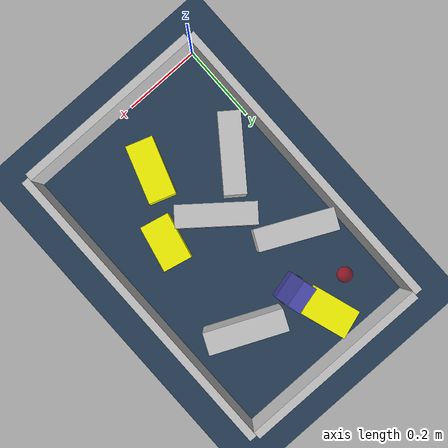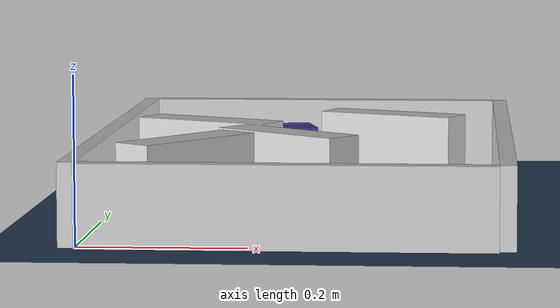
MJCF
<?xml version='1.0' encoding='utf-8'?>
<mujoco model="real_buildable">
  <compiler angle="degree" />
  <option timestep="0.002" integrator="implicitfast" iterations="100" cone="elliptic" />
  <default>
    <geom density="1" />
  </default>
  <asset>
    <texture builtin="gradient" height="3072" rgb1="0.3 0.5 0.7" rgb2="0 0 0" type="skybox" width="512" />
    <texture builtin="checker" height="300" mark="edge" markrgb="0.8 0.8 0.8" name="groundplane" rgb1="0.2 0.3 0.4" rgb2="0.1 0.2 0.3" type="2d" width="300" />
    <material name="groundplane" reflectance="0.2" texrepeat="5 5" texture="groundplane" texuniform="true" />
  </asset>
  <worldbody>
    <light dir="0 0 -1" directional="true" pos="0 0 1.5" />
    <geom name="floor" type="plane" condim="4" friction="0.5 0.005 0.001" material="groundplane" size="0 0 0.05" />
    <body name="walls">
      <geom name="wall_boundary_left" type="box" condim="4" friction="1.0 0.005 0.0001" rgba="0.8 0.8 0.8 1" pos="-0.010000 0.387500 0.050000" euler="0 0 0.000000" size="0.010000 0.397500 0.050000" />
      <geom name="wall_boundary_right" type="box" condim="4" friction="1.0 0.005 0.0001" rgba="0.8 0.8 0.8 1" pos="0.500000 0.387500 0.050000" euler="0 0 0.000000" size="0.010000 0.397500 0.050000" />
      <geom name="wall_boundary_bottom" type="box" condim="4" friction="1.0 0.005 0.0001" rgba="0.8 0.8 0.8 1" pos="0.245000 -0.010000 0.050000" euler="0 0 0.000000" size="0.245000 0.010000 0.050000" />
      <geom name="wall_boundary_top" type="box" condim="4" friction="1.0 0.005 0.0001" rgba="0.8 0.8 0.8 1" pos="0.245000 0.785000 0.050000" euler="0 0 0.000000" size="0.245000 0.010000 0.050000" />
      <geom name="wall_inner_1" type="box" condim="4" friction="1.0 0.005 0.0001" rgba="0.8 0.8 0.8 1" pos="0.221881 0.341436 0.050000" euler="0 0 141.196403" size="0.097500 0.027500 0.050000" />
      <geom name="wall_inner_2" type="box" condim="4" friction="1.0 0.005 0.0001" rgba="0.8 0.8 0.8 1" pos="0.099345 0.258899 0.050000" euler="0 0 233.029884" size="0.097500 0.027500 0.050000" />
      <geom name="wall_inner_3" type="box" condim="4" friction="1.0 0.005 0.0001" rgba="0.8 0.8 0.8 1" pos="0.106000 0.490000 0.050000" euler="0 0 154.200000" size="0.097500 0.027500 0.050000" />
      <geom name="wall_inner_4" type="box" condim="4" friction="1.0 0.005 0.0001" rgba="0.8 0.8 0.8 1" pos="0.350000 0.590000 0.050000" euler="0 0 155.700000" size="0.097500 0.027500 0.050000" />
    </body>
    <body name="car" pos="0.20408659656143963 0.60210095653328899 0.01" quat="0.61566890373676952 0 0 0.78800494983950731">
      <freejoint name="car_freejoint" />
      <inertial pos="0 0 0.0375" mass="0.35" diaginertia="0.000266 0.000266 0.000286" />
      <geom name="front_chassis_collision" type="box" pos="0.0175 0 0.0375" size="0.0175 0.035 0.0325" rgba="0.3 0.3 0.7 1" />
      <geom name="rear_chassis_collision" type="box" pos="-0.0175 0 0.0375" size="0.0175 0.035 0.0325" rgba="0.25 0.25 0.6 1" />
      <geom name="front_marker" type="box" pos="0.034 0 0.0505" size="0.002 0.015 0.01" rgba="1 0.2 0.2 1" contype="0" conaffinity="0" />
      <body name="rear_support_body" pos="-0.03 0 0.0025">
        <joint name="rear_caster_joint" type="ball" damping="0.0001" />
        <inertial pos="0 0 0" mass="0.025" diaginertia="0.000001 0.000001 0.000001" />
        <geom name="rear_support" type="sphere" pos="0 0 0" size="0.0025" friction="0 0 0" rgba="0.7 0.1 0.1 1" />
      </body>
      <body name="front_support_body" pos="0.03 0 0.0025">
        <joint name="front_caster_joint" type="ball" damping="0.0001" />
        <inertial pos="0 0 0" mass="0.025" diaginertia="0.000001 0.000001 0.000001" />
        <geom name="front_support" type="sphere" pos="0 0 0" size="0.0025" friction="0 0 0" rgba="0.1 0.7 0.1 1" />
      </body>
      <body name="left_wheel" pos="0 0.0375 0.015">
        <inertial pos="0 0 0" mass="0.05" diaginertia="0.000003 0.000006 0.000003" />
        <joint name="left_wheel_joint" type="hinge" axis="0 1 0" damping="0.01" armature="0.0001" />
        <geom name="left_wheel_collision" type="cylinder" size="0.015 0.0005" euler="90 0 0" rgba="0.1 0.1 0.1 1" />
      </body>
      <body name="right_wheel" pos="0 -0.0375 0.015">
        <inertial pos="0 0 0" mass="0.05" diaginertia="0.000003 0.000006 0.000003" />
        <joint name="right_wheel_joint" type="hinge" axis="0 1 0" damping="0.01" armature="0.0001" />
        <geom name="right_wheel_collision" type="cylinder" size="0.015 0.0005" euler="90 0 0" rgba="0.1 0.1 0.1 1" />
      </body>
    </body>
    <body name="obstacle_0_movable">
      <geom name="obstacle_0_movable" condim="4" pos="0.35535591023693069 0.30971598945423517 0.025000000000000001" friction="1 0.005 0.0001" rgba="1 1 0 1" size="0.037500 0.060000 0.025000" type="box" mass="0.1" quat="0.11143909090769885 0 0 0.99377126594486809" />
      <joint type="free" />
    </body>
    <body name="obstacle_1_movable">
      <geom name="obstacle_1_movable" condim="4" pos="0.1720222759547354 0.69635554093050389 0.025000000000000001" friction="1 0.005 0.0001" rgba="1 1 0 1" size="0.037500 0.060000 0.025000" type="box" mass="0.1" quat="0.98745543302516481 0 0 0.15789796638679113" />
      <joint type="free" />
    </body>
    <body name="obstacle_2_movable">
      <geom name="obstacle_2_movable" condim="4" pos="0.26786799999999944 0.15388500000000027 0.02" friction="1 0.005 0.0001" rgba="1 1 0 1" size="0.035000 0.075000 0.020000" type="box" mass="0.1" quat="0.16322678897470952 0 0 0.98658857451371573" />
      <joint type="free" />
    </body>
    <site name="goal" type="sphere" pos="0.080000 0.660000 0.0" size="0.02" rgba="1 0 0 0.5" />
  </worldbody>
  <actuator>
    <velocity name="left_wheel_drive" joint="left_wheel_joint" ctrlrange="-25 25" kv="0.75" forcerange="-0.5 0.5" />
    <velocity name="right_wheel_drive" joint="right_wheel_joint" ctrlrange="-25 25" kv="0.75" forcerange="-0.5 0.5" />
  </actuator>
</mujoco>
